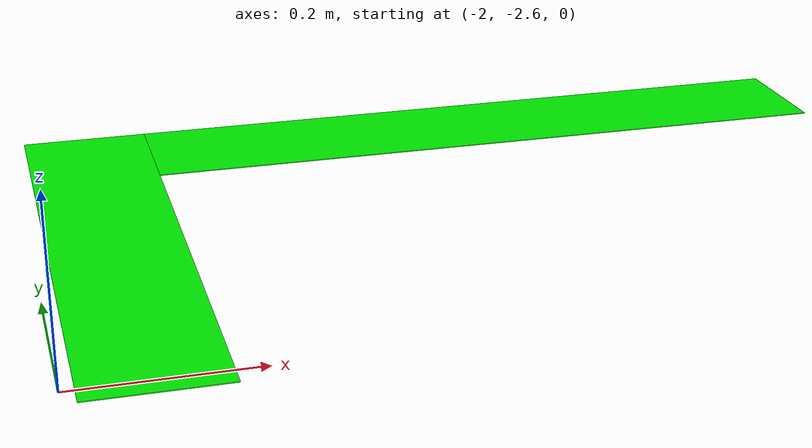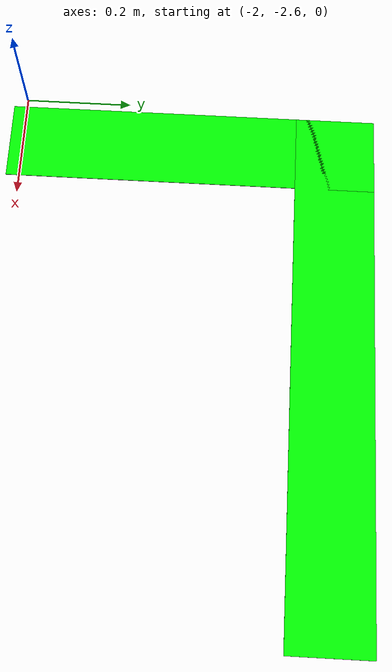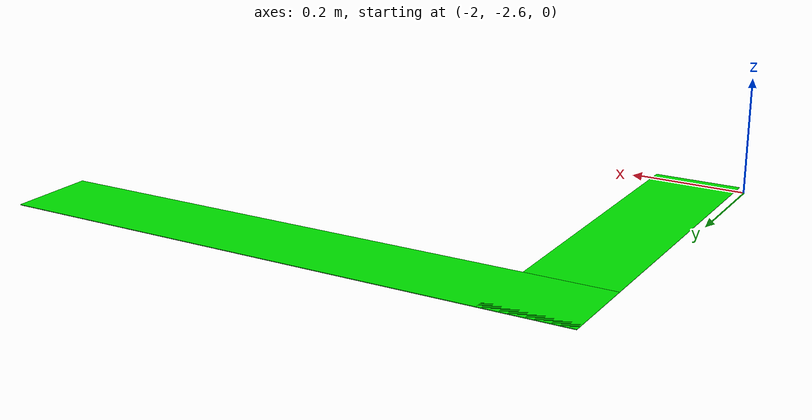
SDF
<?xml version='1.0'?>
<sdf version='1.6'>
  <model name='green_line'>
    <pose frame=''>-1.485 -2.275 0 0 -0 0</pose>
    <link name='Wall_0'>
      <collision name='Wall_0_Collision'>
        <geometry>
          <box>
            <size>0.7 0.15 0.001</size>
          </box>
        </geometry>
        <pose frame=''>0 0 0.0005 0 -0 0</pose>
      </collision>
      <visual name='Wall_0_Visual'>
        <pose frame=''>0 0 0.0005 0 -0 0</pose>
        <geometry>
          <box>
            <size>0.7 0.15 0.001</size>
          </box>
        </geometry>
        <material>
          <script>
            <uri>file://media/materials/scripts/gazebo.material</uri>
            <name>Gazebo/Grey</name>
          </script>
          <ambient>0 1 0 1</ambient>
        </material>
        <meta>
          <layer>0</layer>
        </meta>
      </visual>
      <pose frame=''>-0.425 -0 0 0 -0 1.5708</pose>
    </link>
    <link name='Wall_1'>
      <collision name='Wall_1_Collision'>
        <geometry>
          <box>
            <size>1 0.15 0.001</size>
          </box>
        </geometry>
        <pose frame=''>0 0 0.0005 0 -0 0</pose>
      </collision>
      <visual name='Wall_1_Visual'>
        <pose frame=''>0 0 0.0005 0 -0 0</pose>
        <geometry>
          <box>
            <size>1 0.15 0.001</size>
          </box>
        </geometry>
        <material>
          <script>
            <uri>file://media/materials/scripts/gazebo.material</uri>
            <name>Gazebo/Grey</name>
          </script>
          <ambient>0 1 0 1</ambient>
        </material>
        <meta>
          <layer>0</layer>
        </meta>
      </visual>
      <pose frame=''>0 0.275 0 0 -0 0</pose>
    </link>
    <static>1</static>
  </model>
</sdf>
